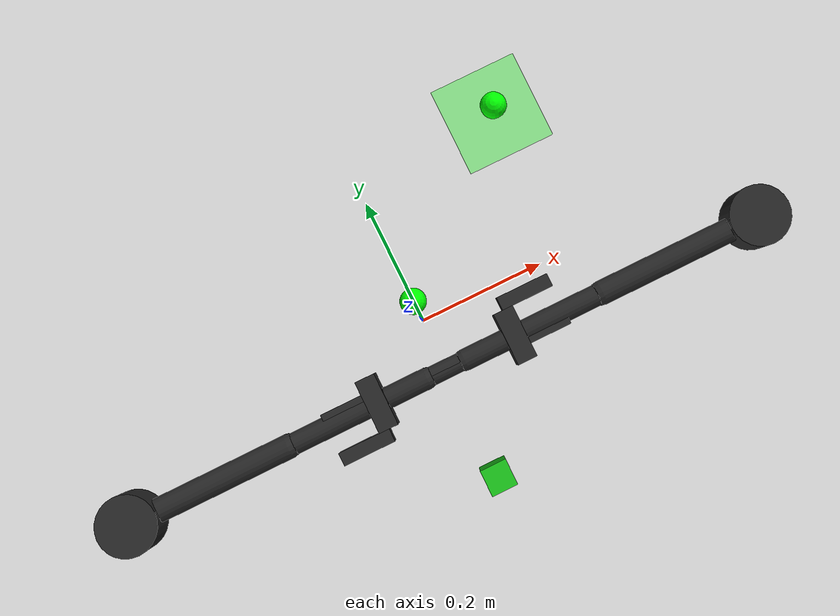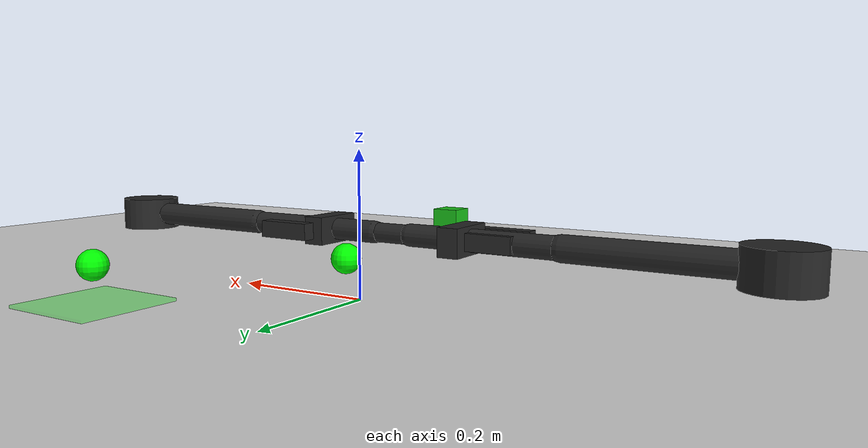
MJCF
<mujoco model="two_arm_2d_cooperative">
  <compiler angle="radian" coordinate="local" inertiafromgeom="true"/>
  <option timestep="0.002" gravity="0 0 -9.81" integrator="RK4" cone="elliptic"/>
  <size njmax="1000" nconmax="400"/>

  <default>
    <joint damping="3" armature="0.03" limited="true"/>
    <geom condim="6" density="600" friction="4 0.05 0.005"
          solref="0.005 1" solimp="0.95 0.99 0.001"/>
  </default>

  <contact>
    <exclude body1="base_L" body2="link1_L"/>
    <exclude body1="link1_L" body2="link2_L"/>
    <exclude body1="link2_L" body2="link3_L"/>

    <exclude body1="base_R" body2="link1_R"/>
    <exclude body1="link1_R" body2="link2_R"/>
    <exclude body1="link2_R" body2="link3_R"/>
  </contact>

  <worldbody>
    <light pos="0 0 2" dir="0 0 -1" diffuse="1 1 1"/>
    <geom name="floor" type="plane" size="2 2 0.1" rgba="0.95 0.95 0.95 1"/>

    <geom name="workspace" type="box" pos="0 0 0.005"
          size="2 2 0.005" rgba="0.85 0.85 0.85 1" contype="0" conaffinity="0"/>

    <!-- Кубик, который переносим -->
    <body name="cube" pos="0 -0.25 0.08">
      <joint name="cube_x" type="slide" axis="1 0 0" range="-0.75 0.75" damping="0.5"/>
      <joint name="cube_y" type="slide" axis="0 1 0" range="-0.50 0.50" damping="0.5"/>

      <geom name="cube_geom" type="box" size="0.02 0.02 0.02"
            rgba="0.1 0.75 0.1 1"
            friction="8 0.1 0.01"
            solref="0.005 1"
            solimp="0.95 0.99 0.001"/>
    </body>

    <!-- Точка передачи: зелёный шар -->
    <site name="transfer_site" pos="0 0.03 0.06" size="0.02" rgba="0 1 0 0.9"/>

    <!-- Финальная цель: зелёный квадрат -->
    <geom name="final_area" type="box" pos="0.235 0.24 0.012"
          size="0.07 0.07 0.002" rgba="0 1 0 0.35" contype="0" conaffinity="0"/>
    <site name="final_site" pos="0.235 0.24 0.06" size="0.02" rgba="0 1 0 0.9"/>

    <!-- LEFT ARM -->
    <body name="base_L" pos="-0.50 -0.08 0.08">
      <geom name="base_geom_L" type="cylinder" size="0.045 0.025"
            rgba="0.15 0.15 0.15 1" contype="0" conaffinity="0"/>
      <joint name="j1_L" type="hinge" axis="0 0 1" range="-3.14 3.14"/>

      <body name="link1_L" pos="0 0 0">
        <geom name="l1_L" type="capsule" fromto="0 0 0  0.25 0 0"
              size="0.018" rgba="0.15 0.15 0.15 1" contype="0" conaffinity="0"/>

        <body name="link2_L" pos="0.25 0 0">
          <joint name="j2_L" type="hinge" axis="0 0 1" range="-3.14 3.14"/>
          <geom name="l2_L" type="capsule" fromto="0 0 0  0.22 0 0"
                size="0.016" rgba="0.15 0.15 0.15 1" contype="0" conaffinity="0"/>

          <body name="link3_L" pos="0.22 0 0">
            <joint name="j3_L" type="hinge" axis="0 0 1" range="-3.14 3.14"/>
            <geom name="l3_L" type="capsule" fromto="0 0 0  0.14 0 0"
                  size="0.014" rgba="0.15 0.15 0.15 1" contype="0" conaffinity="0"/>

            <site name="ee_L" pos="0.14 0 0" size="0.008" rgba="1 0 0 1"/>

            <body name="gripper_L" pos="0.14 0 0">
              <geom name="palm_L" type="box" size="0.015 0.04 0.02"
                    rgba="0.15 0.15 0.15 1" contype="0" conaffinity="0"/>

              <body name="finger_left_L" pos="0.04 0.03 0">
                <joint name="jfL_L" type="slide" axis="0 1 0" range="-0.04 0.04"/>
                <geom name="fingerL_L" type="box" size="0.04 0.010 0.012"
                      pos="0 0.020 0" rgba="0.15 0.15 0.15 1"
                      friction="10 0.1 0.01"/>
              </body>

              <body name="finger_right_L" pos="0.04 0.01 0">
                <joint name="jfR_L" type="slide" axis="0 -1 0" range="-0.04 0.04"/>
                <geom name="fingerR_L" type="box" size="0.04 0.010 0.012"
                      pos="0 -0.020 0" rgba="0.15 0.15 0.15 1"
                      friction="10 0.1 0.01"/>
              </body>

              <site name="grasp_L" pos="0.04 0 0" size="0.008" rgba="0 0 1 1"/>
            </body>
          </body>
        </body>
      </body>
    </body>

    <!-- RIGHT ARM -->
    <body name="base_R" pos="0.50 -0.08 0.08" euler="0 0 3.14159">
      <geom name="base_geom_R" type="cylinder" size="0.045 0.025"
            rgba="0.15 0.15 0.15 1" contype="0" conaffinity="0"/>
      <joint name="j1_R" type="hinge" axis="0 0 1" range="-3.14 3.14"/>

      <body name="link1_R" pos="0 0 0">
        <geom name="l1_R" type="capsule" fromto="0 0 0  0.25 0 0"
              size="0.018" rgba="0.15 0.15 0.15 1" contype="0" conaffinity="0"/>

        <body name="link2_R" pos="0.25 0 0">
          <joint name="j2_R" type="hinge" axis="0 0 1" range="-3.14 3.14"/>
          <geom name="l2_R" type="capsule" fromto="0 0 0  0.22 0 0"
                size="0.016" rgba="0.15 0.15 0.15 1" contype="0" conaffinity="0"/>

          <body name="link3_R" pos="0.22 0 0">
            <joint name="j3_R" type="hinge" axis="0 0 1" range="-3.14 3.14"/>
            <geom name="l3_R" type="capsule" fromto="0 0 0  0.14 0 0"
                  size="0.014" rgba="0.15 0.15 0.15 1" contype="0" conaffinity="0"/>

            <site name="ee_R" pos="0.14 0 0" size="0.008" rgba="1 0 0 1"/>

            <body name="gripper_R" pos="0.14 0 0">
              <geom name="palm_R" type="box" size="0.015 0.04 0.02"
                    rgba="0.15 0.15 0.15 1" contype="0" conaffinity="0"/>

              <body name="finger_left_R" pos="0.04 0.03 0">
                <joint name="jfL_R" type="slide" axis="0 1 0" range="-0.04 0.04"/>
                <geom name="fingerL_R" type="box" size="0.04 0.010 0.012"
                      pos="0 0.020 0" rgba="0.15 0.15 0.15 1"
                      friction="10 0.1 0.01"/>
              </body>

              <body name="finger_right_R" pos="0.04 0.01 0">
                <joint name="jfR_R" type="slide" axis="0 -1 0" range="-0.04 0.04"/>
                <geom name="fingerR_R" type="box" size="0.04 0.010 0.012"
                      pos="0 -0.020 0" rgba="0.15 0.15 0.15 1"
                      friction="10 0.1 0.01"/>
              </body>

              <site name="grasp_R" pos="0.04 0 0" size="0.008" rgba="0 0 1 1"/>
            </body>
          </body>
        </body>
      </body>
    </body>
  </worldbody>

  <actuator>
    <position name="a_j1_L" joint="j1_L" kp="180" ctrlrange="-3.14 3.14" dampratio="1"/>
    <position name="a_j2_L" joint="j2_L" kp="160" ctrlrange="-2.4 2.4" dampratio="1"/>
    <position name="a_j3_L" joint="j3_L" kp="140" ctrlrange="-2.4 2.4" dampratio="1"/>

    <position name="a_j1_R" joint="j1_R" kp="180" ctrlrange="-3.14 3.14" dampratio="1"/>
    <position name="a_j2_R" joint="j2_R" kp="160" ctrlrange="-2.4 2.4" dampratio="1"/>
    <position name="a_j3_R" joint="j3_R" kp="140" ctrlrange="-2.4 2.4" dampratio="1"/>

    <position name="a_fL_L" joint="jfL_L" kp="1200" ctrlrange="-0.04 0" forcerange="-200 200"/>
    <position name="a_fR_L" joint="jfR_L" kp="1200" ctrlrange="0 0.04" forcerange="-200 200"/>

    <position name="a_fL_R" joint="jfL_R" kp="1200" ctrlrange="-0.04 0" forcerange="-200 200"/>
    <position name="a_fR_R" joint="jfR_R" kp="1200" ctrlrange="0 0.04" forcerange="-200 200"/>
  </actuator>
</mujoco>
